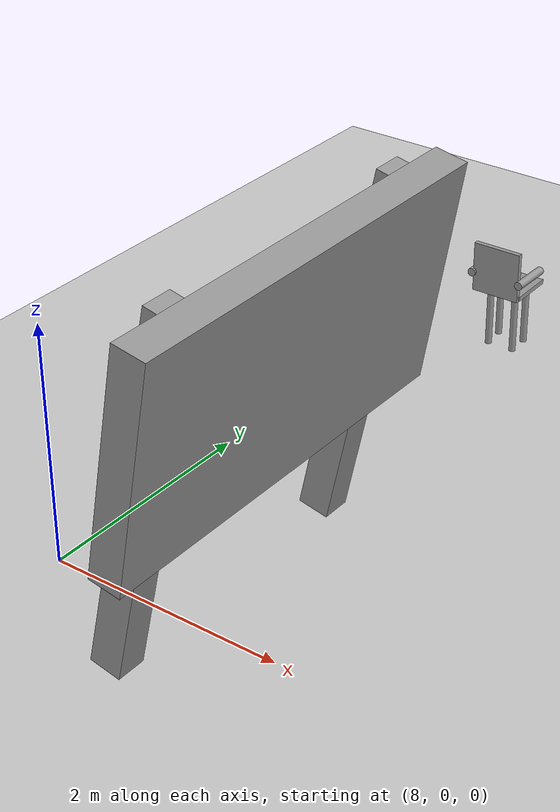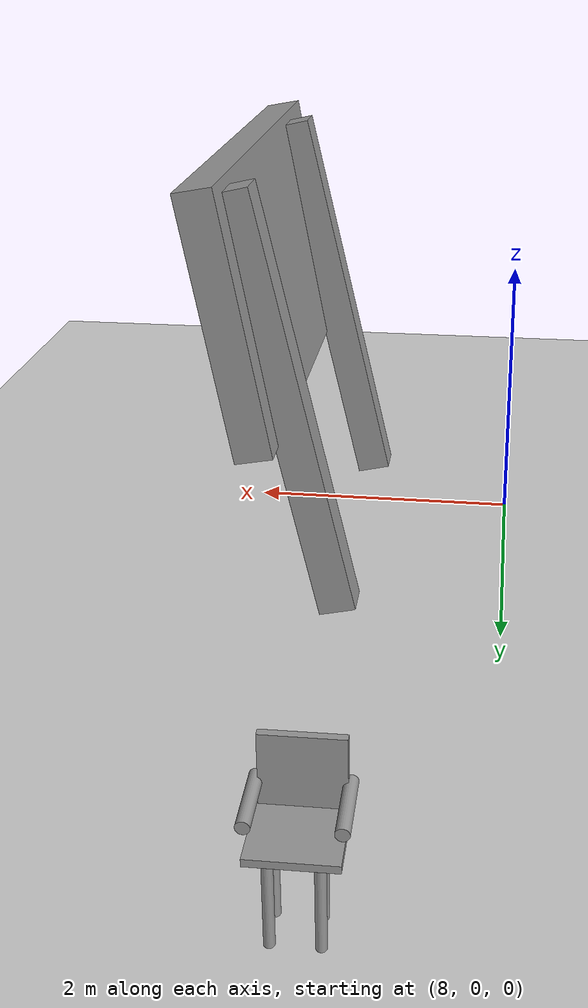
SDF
<sdf version="1.6">
 <world name="default">
  <model name="ground_plane">
   <static>1</static>
   <link name="link">
    <collision name="collision">
     <geometry><plane><normal>0 0 1</normal><size>100 100</size></plane></geometry>
     <surface>
      <contact><collide_bitmask>65535</collide_bitmask></contact>
      <friction><ode><mu>100</mu><mu2>50</mu2></ode></friction>
     </surface>
    </collision>
    <visual name="visual">
     <cast_shadows>0</cast_shadows>
     <geometry><plane><normal>0 0 1</normal><size>100 100</size></plane></geometry>
     <material>
      <script><uri>file://media/materials/scripts/gazebo.material</uri><name>Gazebo/Grey</name></script>
     </material>
    </visual>
   </link>
  </model>
  <model name="chair_clone_clone_clone_1">
   <link name="link_4">
    <inertial>
     <mass>0.00194051</mass>
     <inertia>
      <ixx>5.14044e-05</ixx>
      <ixy>0</ixy>
      <ixz>0</ixz>
      <iyy>5.14044e-05</iyy>
      <iyz>0</iyz>
      <izz>8.34973e-07</izz>
     </inertia>
    </inertial>
    <pose>-0.140129 -0.127166 -0.209129 0 -0 0</pose>
    <visual name="visual">
     <geometry><cylinder><radius>0.0293355</radius><length>0.561516</length></cylinder></geometry>
     <material>
      <lighting>1</lighting>
      <script><uri>file://media/materials/scripts/gazebo.material</uri><name>Gazebo/Grey</name></script>
      <emissive>0 0 0 1</emissive>
     </material>
    </visual>
    <collision name="collision">
     <geometry><cylinder><radius>0.029336</radius><length>0.561516</length></cylinder></geometry>
     <surface>
      <friction>
       <ode><mu>1</mu><mu2>1</mu2><fdir1>0 0 0</fdir1><slip1>0</slip1><slip2>0</slip2></ode>
       <torsional>
        <coefficient>1</coefficient>
        <patch_radius>0</patch_radius>
        <surface_radius>0</surface_radius>
        <use_patch_radius>1</use_patch_radius>
        <ode><slip>0</slip></ode>
       </torsional>
      </friction>
      <bounce><restitution_coefficient>0</restitution_coefficient><threshold>1e+06</threshold></bounce>
      <contact>
       <collide_without_contact>0</collide_without_contact>
       <collide_without_contact_bitmask>1</collide_without_contact_bitmask>
       <collide_bitmask>1</collide_bitmask>
       <ode>
        <soft_cfm>0</soft_cfm>
        <soft_erp>0.2</soft_erp>
        <kp>1e+13</kp>
        <kd>1</kd>
        <max_vel>0.01</max_vel>
        <min_depth>0</min_depth>
       </ode>
       <bullet>
        <split_impulse>1</split_impulse>
        <split_impulse_penetration_threshold>-0.01</split_impulse_penetration_threshold>
        <soft_cfm>0</soft_cfm>
        <soft_erp>0.2</soft_erp>
        <kp>1e+13</kp>
        <kd>1</kd>
       </bullet>
      </contact>
     </surface>
    </collision>
   </link>
   <link name="link_4_clone">
    <inertial>
     <mass>0.00194051</mass>
     <inertia>
      <ixx>5.14044e-05</ixx>
      <ixy>0</ixy>
      <ixz>0</ixz>
      <iyy>5.14044e-05</iyy>
      <iyz>0</iyz>
      <izz>8.34973e-07</izz>
     </inertia>
    </inertial>
    <pose>-0.139565 0.126187 -0.209129 0 -0 0</pose>
    <visual name="visual">
     <geometry><cylinder><radius>0.0293355</radius><length>0.561516</length></cylinder></geometry>
     <material>
      <lighting>1</lighting>
      <script><uri>file://media/materials/scripts/gazebo.material</uri><name>Gazebo/Grey</name></script>
      <shader type="pixel"/>
      <emissive>0 0 0 1</emissive>
     </material>
    </visual>
    <collision name="collision">
     <geometry><cylinder><radius>0.029336</radius><length>0.561516</length></cylinder></geometry>
     <surface>
      <friction>
       <ode><mu>1</mu><mu2>1</mu2><fdir1>0 0 0</fdir1><slip1>0</slip1><slip2>0</slip2></ode>
       <torsional>
        <coefficient>1</coefficient>
        <patch_radius>0</patch_radius>
        <surface_radius>0</surface_radius>
        <use_patch_radius>1</use_patch_radius>
        <ode><slip>0</slip></ode>
       </torsional>
      </friction>
      <bounce><restitution_coefficient>0</restitution_coefficient><threshold>1e+06</threshold></bounce>
      <contact>
       <collide_without_contact>0</collide_without_contact>
       <collide_without_contact_bitmask>1</collide_without_contact_bitmask>
       <collide_bitmask>1</collide_bitmask>
       <ode>
        <soft_cfm>0</soft_cfm>
        <soft_erp>0.2</soft_erp>
        <kp>1e+13</kp>
        <kd>1</kd>
        <max_vel>0.01</max_vel>
        <min_depth>0</min_depth>
       </ode>
       <bullet>
        <split_impulse>1</split_impulse>
        <split_impulse_penetration_threshold>-0.01</split_impulse_penetration_threshold>
        <soft_cfm>0</soft_cfm>
        <soft_erp>0.2</soft_erp>
        <kp>1e+13</kp>
        <kd>1</kd>
       </bullet>
      </contact>
     </surface>
    </collision>
   </link>
   <link name="link_4_clone_0">
    <inertial>
     <mass>0.00194051</mass>
     <inertia>
      <ixx>5.14044e-05</ixx>
      <ixy>0</ixy>
      <ixz>0</ixz>
      <iyy>5.14044e-05</iyy>
      <iyz>0</iyz>
      <izz>8.34973e-07</izz>
     </inertia>
    </inertial>
    <pose>0.062929 0.13105 -0.209129 0 -0 0</pose>
    <visual name="visual">
     <geometry><cylinder><radius>0.0293355</radius><length>0.561516</length></cylinder></geometry>
     <material>
      <lighting>1</lighting>
      <script><uri>file://media/materials/scripts/gazebo.material</uri><name>Gazebo/Grey</name></script>
      <shader type="pixel"/>
      <emissive>0 0 0 1</emissive>
     </material>
    </visual>
    <collision name="collision">
     <geometry><cylinder><radius>0.029336</radius><length>0.561516</length></cylinder></geometry>
     <surface>
      <friction>
       <ode><mu>1</mu><mu2>1</mu2><fdir1>0 0 0</fdir1><slip1>0</slip1><slip2>0</slip2></ode>
       <torsional>
        <coefficient>1</coefficient>
        <patch_radius>0</patch_radius>
        <surface_radius>0</surface_radius>
        <use_patch_radius>1</use_patch_radius>
        <ode><slip>0</slip></ode>
       </torsional>
      </friction>
      <bounce><restitution_coefficient>0</restitution_coefficient><threshold>1e+06</threshold></bounce>
      <contact>
       <collide_without_contact>0</collide_without_contact>
       <collide_without_contact_bitmask>1</collide_without_contact_bitmask>
       <collide_bitmask>1</collide_bitmask>
       <ode>
        <soft_cfm>0</soft_cfm>
        <soft_erp>0.2</soft_erp>
        <kp>1e+13</kp>
        <kd>1</kd>
        <max_vel>0.01</max_vel>
        <min_depth>0</min_depth>
       </ode>
       <bullet>
        <split_impulse>1</split_impulse>
        <split_impulse_penetration_threshold>-0.01</split_impulse_penetration_threshold>
        <soft_cfm>0</soft_cfm>
        <soft_erp>0.2</soft_erp>
        <kp>1e+13</kp>
        <kd>1</kd>
       </bullet>
      </contact>
     </surface>
    </collision>
   </link>
   <link name="link_4_clone_1">
    <inertial>
     <mass>0.00194051</mass>
     <inertia>
      <ixx>5.14044e-05</ixx>
      <ixy>0</ixy>
      <ixz>0</ixz>
      <iyy>5.14044e-05</iyy>
      <iyz>0</iyz>
      <izz>8.34973e-07</izz>
     </inertia>
    </inertial>
    <pose>0.061641 -0.111934 -0.209129 0 -0 0</pose>
    <visual name="visual">
     <geometry><cylinder><radius>0.0293355</radius><length>0.561516</length></cylinder></geometry>
     <material>
      <lighting>1</lighting>
      <script><uri>file://media/materials/scripts/gazebo.material</uri><name>Gazebo/Grey</name></script>
      <shader type="pixel"/>
      <emissive>0 0 0 1</emissive>
     </material>
    </visual>
    <collision name="collision">
     <geometry><cylinder><radius>0.029336</radius><length>0.561516</length></cylinder></geometry>
     <surface>
      <friction>
       <ode><mu>1</mu><mu2>1</mu2><fdir1>0 0 0</fdir1><slip1>0</slip1><slip2>0</slip2></ode>
       <torsional>
        <coefficient>1</coefficient>
        <patch_radius>0</patch_radius>
        <surface_radius>0</surface_radius>
        <use_patch_radius>1</use_patch_radius>
        <ode><slip>0</slip></ode>
       </torsional>
      </friction>
      <bounce><restitution_coefficient>0</restitution_coefficient><threshold>1e+06</threshold></bounce>
      <contact>
       <collide_without_contact>0</collide_without_contact>
       <collide_without_contact_bitmask>1</collide_without_contact_bitmask>
       <collide_bitmask>1</collide_bitmask>
       <ode>
        <soft_cfm>0</soft_cfm>
        <soft_erp>0.2</soft_erp>
        <kp>1e+13</kp>
        <kd>1</kd>
        <max_vel>0.01</max_vel>
        <min_depth>0</min_depth>
       </ode>
       <bullet>
        <split_impulse>1</split_impulse>
        <split_impulse_penetration_threshold>-0.01</split_impulse_penetration_threshold>
        <soft_cfm>0</soft_cfm>
        <soft_erp>0.2</soft_erp>
        <kp>1e+13</kp>
        <kd>1</kd>
       </bullet>
      </contact>
     </surface>
    </collision>
   </link>
   <link name="link_5">
    <inertial>
     <mass>0.00816884</mass>
     <inertia>
      <ixx>0.00015002</ixx>
      <ixy>0</ixy>
      <ixz>0</ixz>
      <iyy>0.000115328</iyy>
      <iyz>0</iyz>
      <izz>0.000262862</izz>
     </inertia>
    </inertial>
    <pose>-0.041662 -0.005028 0.089077 0 -0 0</pose>
    <visual name="visual">
     <geometry><box><size>0.409378 0.467496 0.042729</size></box></geometry>
     <material>
      <lighting>1</lighting>
      <script><uri>file://media/materials/scripts/gazebo.material</uri><name>Gazebo/Grey</name></script>
      <emissive>0 0 0 1</emissive>
     </material>
    </visual>
    <collision name="collision">
     <geometry><box><size>0.409378 0.467496 0.042729</size></box></geometry>
     <surface>
      <friction>
       <ode><mu>1</mu><mu2>1</mu2><fdir1>0 0 0</fdir1><slip1>0</slip1><slip2>0</slip2></ode>
       <torsional>
        <coefficient>1</coefficient>
        <patch_radius>0</patch_radius>
        <surface_radius>0</surface_radius>
        <use_patch_radius>1</use_patch_radius>
        <ode><slip>0</slip></ode>
       </torsional>
      </friction>
      <bounce><restitution_coefficient>0</restitution_coefficient><threshold>1e+06</threshold></bounce>
      <contact>
       <collide_without_contact>0</collide_without_contact>
       <collide_without_contact_bitmask>1</collide_without_contact_bitmask>
       <collide_bitmask>1</collide_bitmask>
       <ode>
        <soft_cfm>0</soft_cfm>
        <soft_erp>0.2</soft_erp>
        <kp>1e+13</kp>
        <kd>1</kd>
        <max_vel>0.01</max_vel>
        <min_depth>0</min_depth>
       </ode>
       <bullet>
        <split_impulse>1</split_impulse>
        <split_impulse_penetration_threshold>-0.01</split_impulse_penetration_threshold>
        <soft_cfm>0</soft_cfm>
        <soft_erp>0.2</soft_erp>
        <kp>1e+13</kp>
        <kd>1</kd>
       </bullet>
      </contact>
     </surface>
    </collision>
   </link>
   <link name="link_6">
    <inertial>
     <mass>0.00855687</mass>
     <inertia>
      <ixx>0.000285159</ixx>
      <ixy>0</ixy>
      <ixz>0</ixz>
      <iyy>0.000146983</iyy>
      <iyz>0</iyz>
      <izz>0.000140925</izz>
     </inertia>
    </inertial>
    <pose>0.165697 -0.006458 0.287866 0 -0 0</pose>
    <visual name="visual">
     <geometry><box><size>0.0439 0.442383 0.451884</size></box></geometry>
     <material>
      <lighting>1</lighting>
      <script><uri>file://media/materials/scripts/gazebo.material</uri><name>Gazebo/Grey</name></script>
      <emissive>0 0 0 1</emissive>
     </material>
    </visual>
    <collision name="collision">
     <geometry><box><size>0.0439 0.442383 0.451884</size></box></geometry>
     <surface>
      <friction>
       <ode><mu>1</mu><mu2>1</mu2><fdir1>0 0 0</fdir1><slip1>0</slip1><slip2>0</slip2></ode>
       <torsional>
        <coefficient>1</coefficient>
        <patch_radius>0</patch_radius>
        <surface_radius>0</surface_radius>
        <use_patch_radius>1</use_patch_radius>
        <ode><slip>0</slip></ode>
       </torsional>
      </friction>
      <bounce><restitution_coefficient>0</restitution_coefficient><threshold>1e+06</threshold></bounce>
      <contact>
       <collide_without_contact>0</collide_without_contact>
       <collide_without_contact_bitmask>1</collide_without_contact_bitmask>
       <collide_bitmask>1</collide_bitmask>
       <ode>
        <soft_cfm>0</soft_cfm>
        <soft_erp>0.2</soft_erp>
        <kp>1e+13</kp>
        <kd>1</kd>
        <max_vel>0.01</max_vel>
        <min_depth>0</min_depth>
       </ode>
       <bullet>
        <split_impulse>1</split_impulse>
        <split_impulse_penetration_threshold>-0.01</split_impulse_penetration_threshold>
        <soft_cfm>0</soft_cfm>
        <soft_erp>0.2</soft_erp>
        <kp>1e+13</kp>
        <kd>1</kd>
       </bullet>
      </contact>
     </surface>
    </collision>
   </link>
   <link name="link_7">
    <inertial>
     <mass>0.00209129</mass>
     <inertia>
      <ixx>2.57536e-05</ixx>
      <ixy>0</ixy>
      <ixz>0</ixz>
      <iyy>2.57536e-05</iyy>
      <iyz>0</iyz>
      <izz>1.44551e-06</izz>
     </inertia>
    </inertial>
    <pose>0.0147 0.228665 0.230372 0 1.55081 0</pose>
    <visual name="visual">
     <geometry><cylinder><radius>0.0371808</radius><length>0.378984</length></cylinder></geometry>
     <material>
      <lighting>1</lighting>
      <script><uri>file://media/materials/scripts/gazebo.material</uri><name>Gazebo/Grey</name></script>
      <emissive>0 0 0 1</emissive>
     </material>
    </visual>
    <collision name="collision">
     <geometry><cylinder><radius>0.037181</radius><length>0.378984</length></cylinder></geometry>
     <surface>
      <friction>
       <ode><mu>1</mu><mu2>1</mu2><fdir1>0 0 0</fdir1><slip1>0</slip1><slip2>0</slip2></ode>
       <torsional>
        <coefficient>1</coefficient>
        <patch_radius>0</patch_radius>
        <surface_radius>0</surface_radius>
        <use_patch_radius>1</use_patch_radius>
        <ode><slip>0</slip></ode>
       </torsional>
      </friction>
      <bounce><restitution_coefficient>0</restitution_coefficient><threshold>1e+06</threshold></bounce>
      <contact>
       <collide_without_contact>0</collide_without_contact>
       <collide_without_contact_bitmask>1</collide_without_contact_bitmask>
       <collide_bitmask>1</collide_bitmask>
       <ode>
        <soft_cfm>0</soft_cfm>
        <soft_erp>0.2</soft_erp>
        <kp>1e+13</kp>
        <kd>1</kd>
        <max_vel>0.01</max_vel>
        <min_depth>0</min_depth>
       </ode>
       <bullet>
        <split_impulse>1</split_impulse>
        <split_impulse_penetration_threshold>-0.01</split_impulse_penetration_threshold>
        <soft_cfm>0</soft_cfm>
        <soft_erp>0.2</soft_erp>
        <kp>1e+13</kp>
        <kd>1</kd>
       </bullet>
      </contact>
     </surface>
    </collision>
   </link>
   <link name="link_7_clone">
    <inertial>
     <mass>0.00209129</mass>
     <inertia>
      <ixx>2.57536e-05</ixx>
      <ixy>0</ixy>
      <ixz>0</ixz>
      <iyy>2.57536e-05</iyy>
      <iyz>0</iyz>
      <izz>1.44551e-06</izz>
     </inertia>
    </inertial>
    <pose>0.01639 -0.235319 0.229201 0 1.55081 0</pose>
    <visual name="visual">
     <geometry><cylinder><radius>0.0371808</radius><length>0.378984</length></cylinder></geometry>
     <material>
      <lighting>1</lighting>
      <script><uri>file://media/materials/scripts/gazebo.material</uri><name>Gazebo/Grey</name></script>
      <shader type="pixel"/>
      <emissive>0 0 0 1</emissive>
     </material>
    </visual>
    <collision name="collision">
     <geometry><cylinder><radius>0.037181</radius><length>0.378984</length></cylinder></geometry>
     <surface>
      <friction>
       <ode><mu>1</mu><mu2>1</mu2><fdir1>0 0 0</fdir1><slip1>0</slip1><slip2>0</slip2></ode>
       <torsional>
        <coefficient>1</coefficient>
        <patch_radius>0</patch_radius>
        <surface_radius>0</surface_radius>
        <use_patch_radius>1</use_patch_radius>
        <ode><slip>0</slip></ode>
       </torsional>
      </friction>
      <bounce><restitution_coefficient>0</restitution_coefficient><threshold>1e+06</threshold></bounce>
      <contact>
       <collide_without_contact>0</collide_without_contact>
       <collide_without_contact_bitmask>1</collide_without_contact_bitmask>
       <collide_bitmask>1</collide_bitmask>
       <ode>
        <soft_cfm>0</soft_cfm>
        <soft_erp>0.2</soft_erp>
        <kp>1e+13</kp>
        <kd>1</kd>
        <max_vel>0.01</max_vel>
        <min_depth>0</min_depth>
       </ode>
       <bullet>
        <split_impulse>1</split_impulse>
        <split_impulse_penetration_threshold>-0.01</split_impulse_penetration_threshold>
        <soft_cfm>0</soft_cfm>
        <soft_erp>0.2</soft_erp>
        <kp>1e+13</kp>
        <kd>1</kd>
       </bullet>
      </contact>
     </surface>
    </collision>
   </link>
   <joint name="link_5_JOINT_2" type="fixed">
    <parent>link_5</parent>
    <child>link_4_clone_1</child>
    <physics>
     <ode><limit><cfm>0</cfm><erp>0.2</erp></limit><suspension><cfm>0</cfm><erp>0.2</erp></suspension></ode>
    </physics>
   </joint>
   <joint name="link_5_JOINT_3" type="fixed">
    <parent>link_5</parent>
    <child>link_4</child>
    <physics>
     <ode><limit><cfm>0</cfm><erp>0.2</erp></limit><suspension><cfm>0</cfm><erp>0.2</erp></suspension></ode>
    </physics>
   </joint>
   <joint name="link_5_JOINT_4" type="fixed">
    <parent>link_5</parent>
    <child>link_4_clone_0</child>
    <physics>
     <ode><limit><cfm>0</cfm><erp>0.2</erp></limit><suspension><cfm>0</cfm><erp>0.2</erp></suspension></ode>
    </physics>
   </joint>
   <joint name="link_5_JOINT_5" type="fixed">
    <parent>link_5</parent>
    <child>link_4_clone</child>
    <physics>
     <ode><limit><cfm>0</cfm><erp>0.2</erp></limit><suspension><cfm>0</cfm><erp>0.2</erp></suspension></ode>
    </physics>
   </joint>
   <joint name="link_5_JOINT_6" type="fixed">
    <parent>link_5</parent>
    <child>link_6</child>
    <physics>
     <ode><limit><cfm>0</cfm><erp>0.2</erp></limit><suspension><cfm>0</cfm><erp>0.2</erp></suspension></ode>
    </physics>
   </joint>
   <joint name="link_5_JOINT_7" type="fixed">
    <parent>link_5</parent>
    <child>link_7</child>
    <physics>
     <ode><limit><cfm>0</cfm><erp>0.2</erp></limit><suspension><cfm>0</cfm><erp>0.2</erp></suspension></ode>
    </physics>
   </joint>
   <joint name="link_5_JOINT_8" type="fixed">
    <parent>link_5</parent>
    <child>link_7_clone</child>
    <physics>
     <ode><limit><cfm>0</cfm><erp>0.2</erp></limit><suspension><cfm>0</cfm><erp>0.2</erp></suspension></ode>
    </physics>
   </joint>
   <static>0</static>
   <pose>8.9418 4.72716 0.48988 5e-06 1.9e-05 -1.55825</pose>
  </model>
  <model name="office4">
   <link name="link_0">
    <inertial>
     <mass>1.56421</mass>
     <inertia><ixx>1.86605</ixx><ixy>0</ixy><ixz>0</ixz><iyy>0.434357</iyy><iyz>0</iyz><izz>1.44938</izz></inertia>
    </inertial>
    <pose>0.136334 -0.092702 0.461048 0 -0.039482 0</pose>
    <visual name="visual">
     <geometry><box><size>0.260435 3.32434 1.80676</size></box></geometry>
     <material>
      <lighting>1</lighting>
      <script><uri>file://media/materials/scripts/gazebo.material</uri><name>Gazebo/Grey</name></script>
      <emissive>0 0 0 1</emissive>
     </material>
    </visual>
    <collision name="collision">
     <geometry><box><size>0.260435 3.32434 1.80676</size></box></geometry>
     <surface>
      <friction>
       <ode><mu>1</mu><mu2>1</mu2><fdir1>0 0 0</fdir1><slip1>0</slip1><slip2>0</slip2></ode>
       <torsional>
        <coefficient>1</coefficient>
        <patch_radius>0</patch_radius>
        <surface_radius>0</surface_radius>
        <use_patch_radius>1</use_patch_radius>
        <ode><slip>0</slip></ode>
       </torsional>
      </friction>
      <bounce><restitution_coefficient>0</restitution_coefficient><threshold>1e+06</threshold></bounce>
      <contact>
       <collide_without_contact>0</collide_without_contact>
       <collide_without_contact_bitmask>1</collide_without_contact_bitmask>
       <collide_bitmask>1</collide_bitmask>
       <ode>
        <soft_cfm>0</soft_cfm>
        <soft_erp>0.2</soft_erp>
        <kp>1e+13</kp>
        <kd>1</kd>
        <max_vel>0.01</max_vel>
        <min_depth>0</min_depth>
       </ode>
       <bullet>
        <split_impulse>1</split_impulse>
        <split_impulse_penetration_threshold>-0.01</split_impulse_penetration_threshold>
        <soft_cfm>0</soft_cfm>
        <soft_erp>0.2</soft_erp>
        <kp>1e+13</kp>
        <kd>1</kd>
       </bullet>
      </contact>
     </surface>
    </collision>
   </link>
   <link name="link_1">
    <inertial>
     <mass>0.195483</mass>
     <inertia>
      <ixx>0.14967</ixx>
      <ixy>0</ixy>
      <ixz>0</ixz>
      <iyy>0.149754</iyy>
      <iyz>0</iyz>
      <izz>0.00210976</izz>
     </inertia>
    </inertial>
    <pose>-0.062425 1.2359 -0.230522 0 -0 0</pose>
    <visual name="visual">
     <geometry><box><size>0.259473 0.249367 3.02085</size></box></geometry>
     <material>
      <lighting>1</lighting>
      <script><uri>file://media/materials/scripts/gazebo.material</uri><name>Gazebo/Grey</name></script>
      <emissive>0 0 0 1</emissive>
     </material>
    </visual>
    <collision name="collision">
     <geometry><box><size>0.259473 0.249367 3.02085</size></box></geometry>
     <surface>
      <friction>
       <ode><mu>1</mu><mu2>1</mu2><fdir1>0 0 0</fdir1><slip1>0</slip1><slip2>0</slip2></ode>
       <torsional>
        <coefficient>1</coefficient>
        <patch_radius>0</patch_radius>
        <surface_radius>0</surface_radius>
        <use_patch_radius>1</use_patch_radius>
        <ode><slip>0</slip></ode>
       </torsional>
      </friction>
      <bounce><restitution_coefficient>0</restitution_coefficient><threshold>1e+06</threshold></bounce>
      <contact>
       <collide_without_contact>0</collide_without_contact>
       <collide_without_contact_bitmask>1</collide_without_contact_bitmask>
       <collide_bitmask>1</collide_bitmask>
       <ode>
        <soft_cfm>0</soft_cfm>
        <soft_erp>0.2</soft_erp>
        <kp>1e+13</kp>
        <kd>1</kd>
        <max_vel>0.01</max_vel>
        <min_depth>0</min_depth>
       </ode>
       <bullet>
        <split_impulse>1</split_impulse>
        <split_impulse_penetration_threshold>-0.01</split_impulse_penetration_threshold>
        <soft_cfm>0</soft_cfm>
        <soft_erp>0.2</soft_erp>
        <kp>1e+13</kp>
        <kd>1</kd>
       </bullet>
      </contact>
     </surface>
    </collision>
   </link>
   <link name="link_1_clone">
    <inertial>
     <mass>0.195483</mass>
     <inertia>
      <ixx>0.14967</ixx>
      <ixy>0</ixy>
      <ixz>0</ixz>
      <iyy>0.149754</iyy>
      <iyz>0</iyz>
      <izz>0.00210976</izz>
     </inertia>
    </inertial>
    <pose>-0.073909 -1.1432 -0.230523 0 -0 0</pose>
    <visual name="visual">
     <geometry><box><size>0.259473 0.249367 3.02085</size></box></geometry>
     <material>
      <lighting>1</lighting>
      <script><uri>file://media/materials/scripts/gazebo.material</uri><name>Gazebo/Grey</name></script>
      <shader type="pixel"/>
      <emissive>0 0 0 1</emissive>
     </material>
    </visual>
    <collision name="collision">
     <geometry><box><size>0.259473 0.249367 3.02085</size></box></geometry>
     <surface>
      <friction>
       <ode><mu>1</mu><mu2>1</mu2><fdir1>0 0 0</fdir1><slip1>0</slip1><slip2>0</slip2></ode>
       <torsional>
        <coefficient>1</coefficient>
        <patch_radius>0</patch_radius>
        <surface_radius>0</surface_radius>
        <use_patch_radius>1</use_patch_radius>
        <ode><slip>0</slip></ode>
       </torsional>
      </friction>
      <bounce><restitution_coefficient>0</restitution_coefficient><threshold>1e+06</threshold></bounce>
      <contact>
       <collide_without_contact>0</collide_without_contact>
       <collide_without_contact_bitmask>1</collide_without_contact_bitmask>
       <collide_bitmask>1</collide_bitmask>
       <ode>
        <soft_cfm>0</soft_cfm>
        <soft_erp>0.2</soft_erp>
        <kp>1e+13</kp>
        <kd>1</kd>
        <max_vel>0.01</max_vel>
        <min_depth>0</min_depth>
       </ode>
       <bullet>
        <split_impulse>1</split_impulse>
        <split_impulse_penetration_threshold>-0.01</split_impulse_penetration_threshold>
        <soft_cfm>0</soft_cfm>
        <soft_erp>0.2</soft_erp>
        <kp>1e+13</kp>
        <kd>1</kd>
       </bullet>
      </contact>
     </surface>
    </collision>
   </link>
   <joint name="link_0_JOINT_0" type="fixed">
    <parent>link_0</parent>
    <child>link_1</child>
    <physics>
     <ode><limit><cfm>0</cfm><erp>0.2</erp></limit><suspension><cfm>0</cfm><erp>0.2</erp></suspension></ode>
    </physics>
   </joint>
   <joint name="link_0_JOINT_1" type="fixed">
    <parent>link_0</parent>
    <child>link_1_clone</child>
    <physics>
     <ode><limit><cfm>0</cfm><erp>0.2</erp></limit><suspension><cfm>0</cfm><erp>0.2</erp></suspension></ode>
    </physics>
   </joint>
   <static>0</static>
   <pose>9.58219 0.505116 1.71208 0.001083 0.221314 0.003401</pose>
  </model>
 </world>
</sdf>
